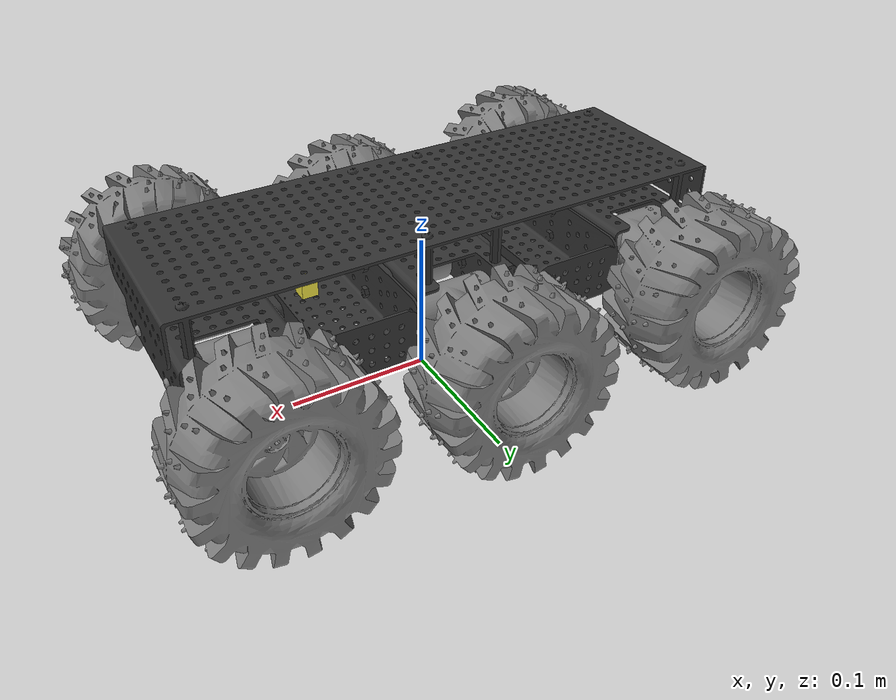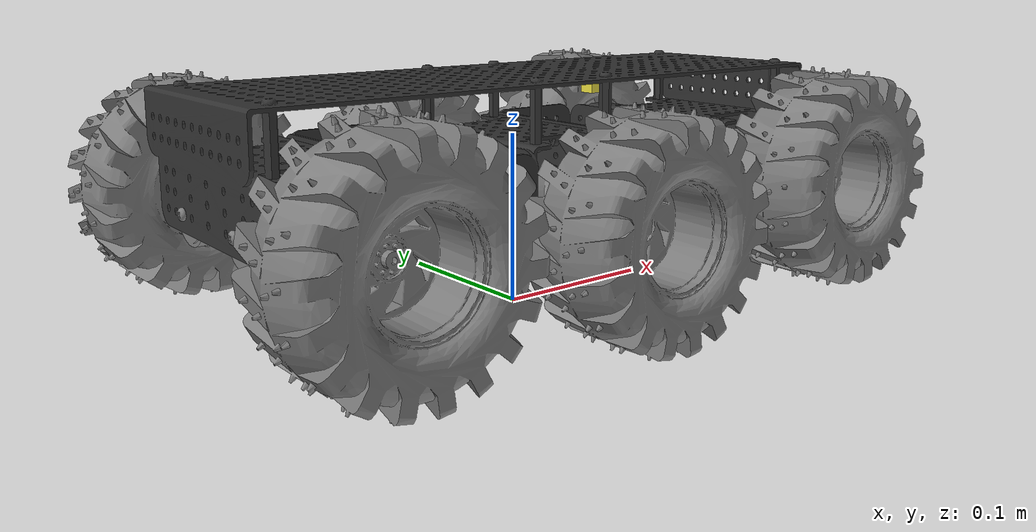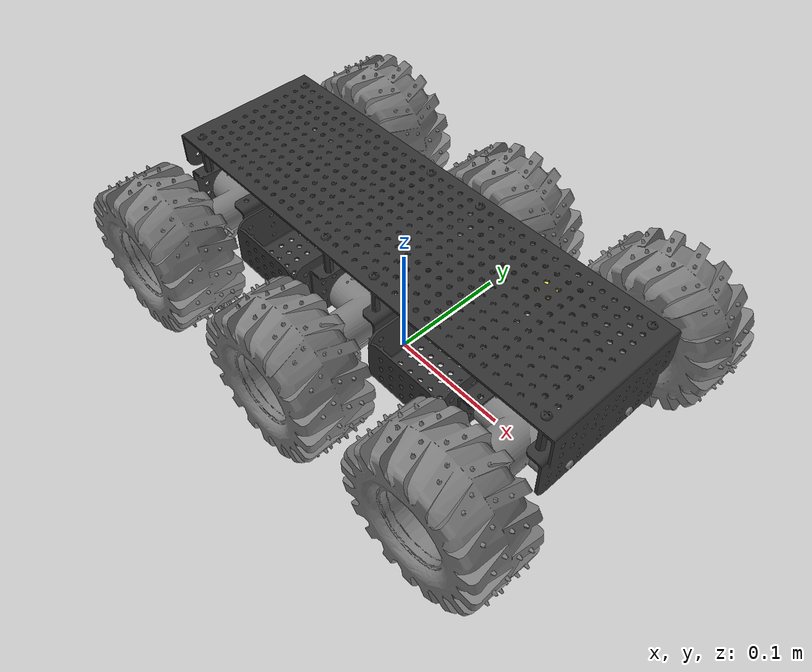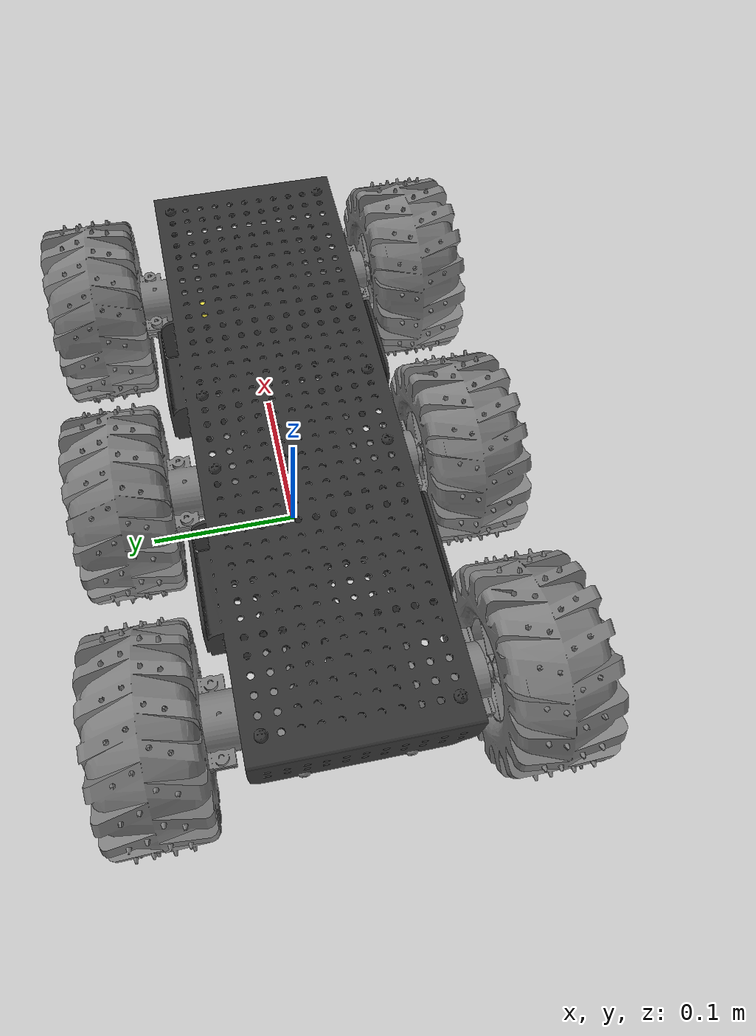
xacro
<robot xmlns:xacro="http://www.ros.org/wiki/xacro" name="ndo">

    <xacro:arg name="use_sim_ctrl" default="false"/>

    <!-- Include macros -->
    <xacro:include filename="$(find ndo_description)/urdf/wheel.urdf.xacro"/>

    <!-- Include controller -->
    <xacro:unless value="$(arg use_sim_ctrl)">
        <xacro:include filename="$(find ndo_description)/urdf/diff_drive.xacro"/>
    </xacro:unless>

    <!-- Base properties -->
    <xacro:property name="base_width" value="0.12"/>
    <xacro:property name="base_length" value="0.38"/>
    <xacro:property name="base_height" value="0.072"/>
    <xacro:property name="footprint_zoff" value="${(0.135-base_height/2)}"/>

    <!-- Spring properties -->
    <xacro:property name="spring_stiffness" value="4"/>

    <!-- Links and joints! -->
    <link name="base_link"/>

    <link name="body_link">
        <visual>
            <geometry>
                <mesh filename="file://$(find ndo_description)/mesh/base.stl"/>
            </geometry>
            <material name="Black">
                <color rgba="0.2 0.2 0.2 1.0"/>
            </material>
        </visual>
        <collision>
            <geometry>
                <box size="${base_length} ${base_width} ${base_height}"/>
            </geometry>
        </collision>
        <inertial>
            <origin xyz="-0.00275 0 0" rpy="0 0 0"/>
            <mass value="2.5"/>
            <!-- Calculated inertia assumes that the body is a Cuboid -->
            <inertia izz="0.031163" ixy="0.0" ixz="0.0" iyy="0.00408" iyz="0.0" ixx="0.033083"/>
        </inertial>
    </link>

    <!-- TODO Should probably be dynamic since the robot has a suspension system -->
    <link name="base_footprint"/>

    <link name="imu_link">
        <visual>
            <geometry>
                <box size="0.01 0.01 0.01"/>
            </geometry>
        </visual>

        <collision>
            <geometry>
                <box size="0.01 0.01 0.01"/>
            </geometry>
        </collision>
        <inertial>
            <origin xyz="0 0 0" rpy="0 0 0"/>
            <mass value="0.01"/>
            <inertia ixx="1.6666666666666668e-7" ixy="0.0" ixz="0.0" iyy="1.6666666666666668e-7" iyz="0.0" izz="1.6666666666666668e-7"/>
        </inertial>
    </link>

    <!-- Joint base_link with base_footprint to place it at ground level -->
    <joint name="base_joint" type="fixed">
        <parent link="base_footprint"/>
        <child link="base_link"/>
        <origin xyz="0.0 0.0 ${footprint_zoff}" rpy="0 0 0"/>
    </joint>

    <joint name="body_joint" type="fixed">
        <parent link="base_link"/>
        <child link="body_link"/>
        <origin xyz="0 0 0" rpy="0 0 0"/>
    </joint>

    <joint name="imu_joint" type="fixed">
        <parent link="base_link"/>
        <child link="imu_link"/>
        <origin xyz="0.1 0.04 0.02" rpy="0 0 0"/>
    </joint>

    <!-- Create wheels -->
    <xacro:wheel position="front" side="l"/>
    <xacro:wheel position="front" side="r"/>
    <xacro:wheel position="middle" side="l"/>
    <xacro:wheel position="middle" side="r"/>
    <xacro:wheel position="back" side="l"/>
    <xacro:wheel position="back" side="r"/>

</robot>

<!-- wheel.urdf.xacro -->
<robot xmlns:xacro="http://www.ros.org/wiki/xacro" name="ndo_wheel">
    <xacro:macro name="wheel" params="position side">
        <xacro:property name="wheel_radius" value="0.063"/>
        <xacro:property name="wheel_width" value="0.06"/>
        <xacro:property name="wheel_conn_depth" value="0.013"/>
        <xacro:property name="wheel_adapter_x" value="0.15"/>
        <xacro:property name="wheel_adapter_y" value="0.03"/>
        <xacro:property name="wheel_zoff" value="-0.025"/>

        <xacro:property name="prefix" value="${position}whl_${side}"/>
        <xacro:if value="${side == 'l'}">
            <xacro:property name="y_reflect" value="1"/>
        </xacro:if>
        <xacro:if value="${side == 'r'}">
            <xacro:property name="y_reflect" value="-1"/>
        </xacro:if>
        <xacro:if value="${position == 'front'}">
            <xacro:property name="x_reflect" value="1"/>
            <xacro:property name="z_offset" value="${wheel_zoff}"/>
        </xacro:if>
        <xacro:if value="${position == 'middle'}">
            <xacro:property name="x_reflect" value="0"/>
            <xacro:property name="z_offset" value="${wheel_zoff-0.01}"/>
        </xacro:if>
        <xacro:if value="${position == 'back'}">
            <xacro:property name="x_reflect" value="-1"/>
            <xacro:property name="z_offset" value="${wheel_zoff}"/>
        </xacro:if>

        <link name="${prefix}_adptr_link">
            <visual>
                <origin xyz="0 0 0" rpy="${y_reflect*-pi/2} 0 0"/>
                <geometry>
                    <mesh filename="file://$(find ndo_description)/mesh/wheel_adapter.stl"/>
                </geometry>
                <material name="Gray">
                    <color rgba="0.5 0.5 0.5 1.0"/>
                </material>
            </visual>
            <inertial>
                <origin xyz="0 0 0" rpy="0 0 0"/>
                <mass value="0.2"/>
                <inertia ixx="8.4842761417e-05" ixy="-3.5206662807e-09" ixz="-8.7257106991e-09" iyy="1.2329460329e-04" iyz="5.1535165447e-09" izz="6.9099655771e-05"/>
            </inertial>
        </link>

        <link name="${prefix}_link">
            <visual>
                <origin xyz="0 0 0" rpy="${y_reflect*-pi/2} 0 0"/>
                <geometry>
                    <mesh filename="file://$(find ndo_description)/mesh/wheel.stl"/>
                </geometry>
                <material name="Gray">
                <color rgba="0.5 0.5 0.5 1.0"/>
                </material>
            </visual>
            <collision>
                <origin xyz="0 0 0" rpy="${y_reflect*-pi/2} 0 0"/>
                <geometry>
                    <cylinder radius="${wheel_radius}" length="${wheel_width}"/>
                </geometry>
            </collision>
            <inertial>
                <origin xyz="0 0 0" rpy="0 0 0"/>
                <mass value="0.2"/>
                <inertia ixx="0.0003969" ixy="0" ixz="0" iyy="0.00025845" iyz="0" izz="0.00025845"/>
            </inertial>
        </link>

        <joint name="${prefix}_adptr_joint" type="revolute">
            <parent link="base_link"/>
            <child link="${prefix}_adptr_link"/>
            <origin xyz="${x_reflect*wheel_adapter_x} ${y_reflect*wheel_adapter_y} ${z_offset}" rpy="0 0 0"/>
            <axis xyz="1 0 0"/>
            <dynamics damping="0.7" friction="0.1"/>
            <limit lower="-0.28" upper="${pi/4}" effort="30" velocity="${pi/4}"/>
        </joint>

        <joint name="${prefix}_joint" type="continuous">
            <parent link="${prefix}_adptr_link"/>
            <child link="${prefix}_link"/>
            <origin xyz="0 ${y_reflect*(0.062+wheel_width/2-wheel_conn_depth)} 0" rpy="0 0 0"/>
            <axis xyz="0 1 0"/>
        </joint>
    </xacro:macro>
</robot>
